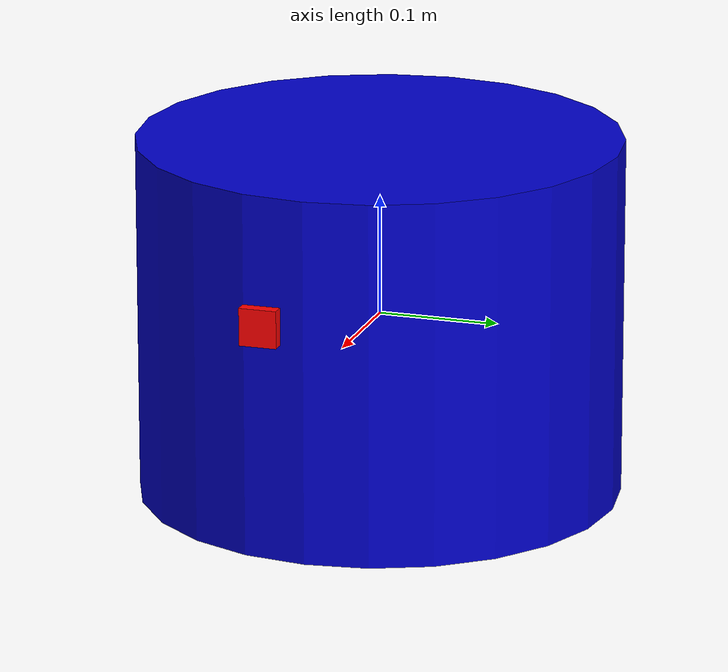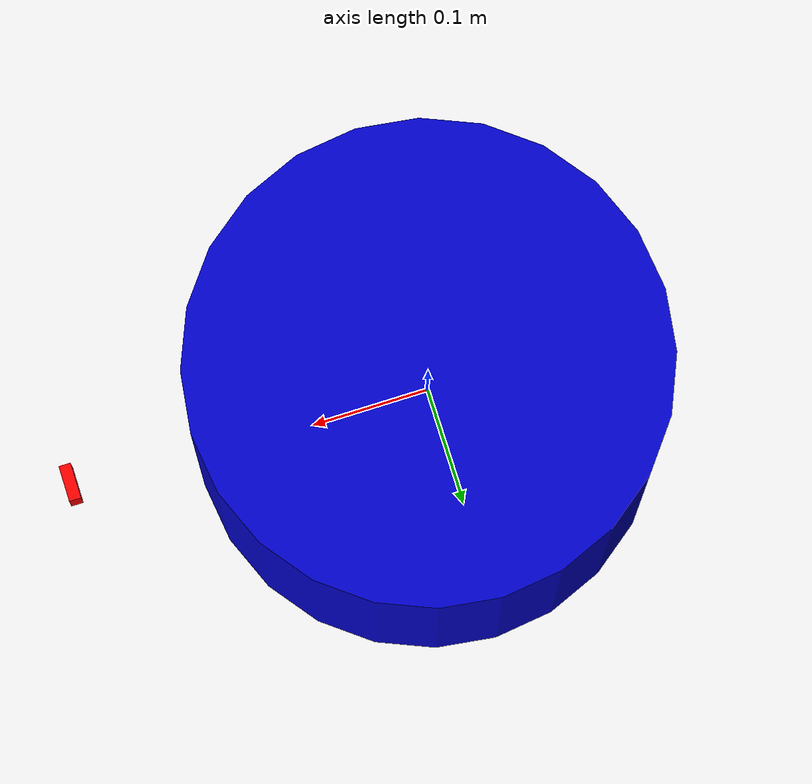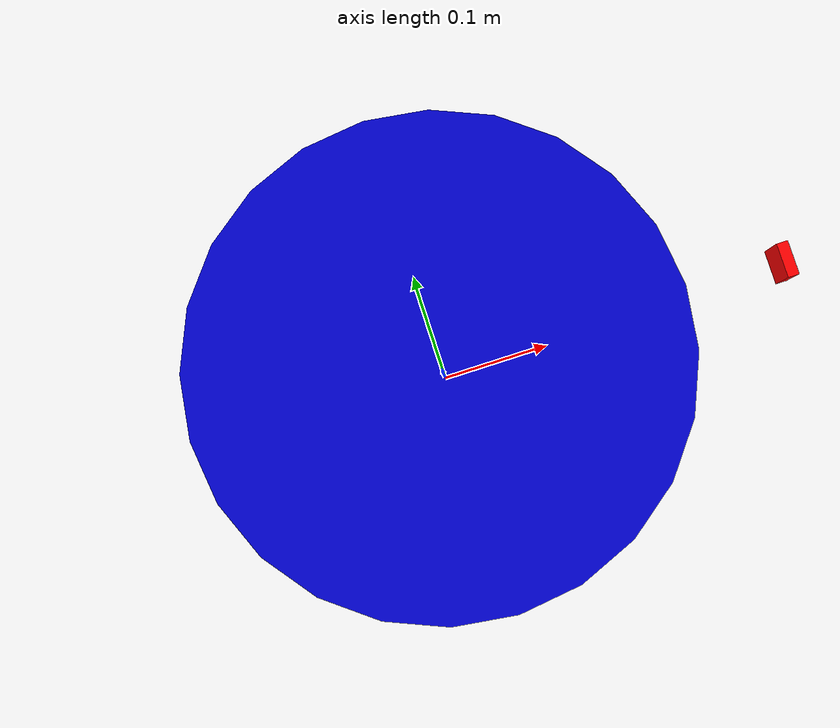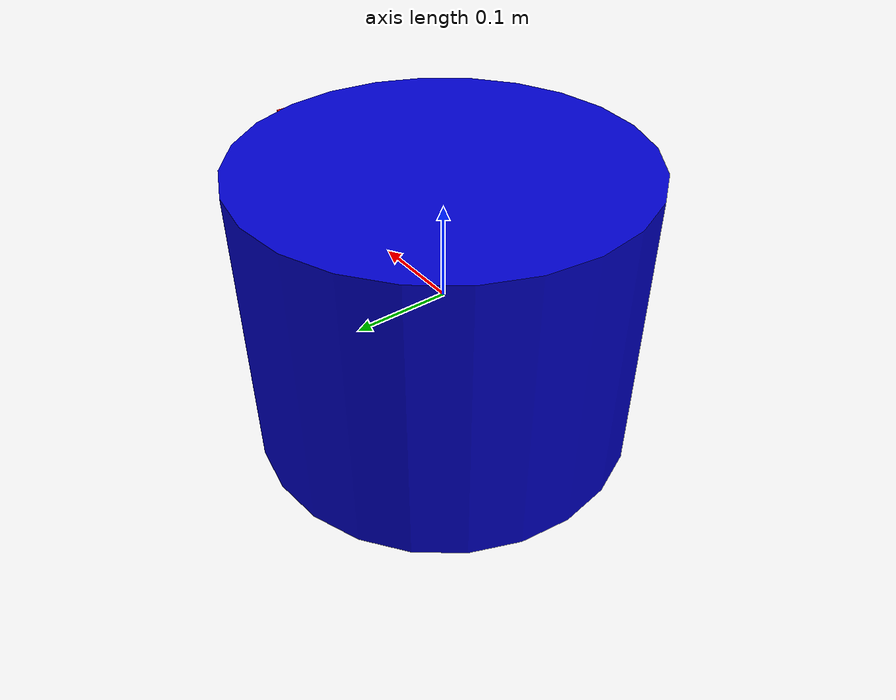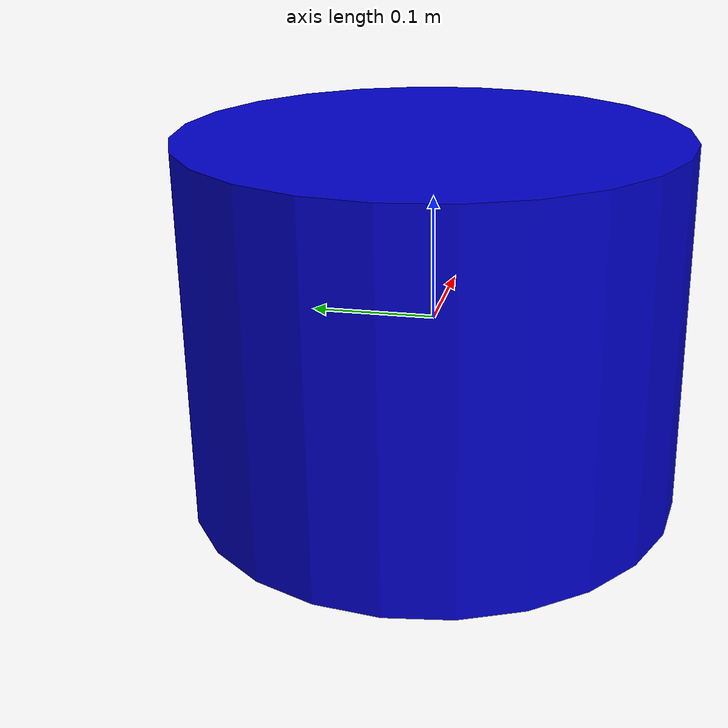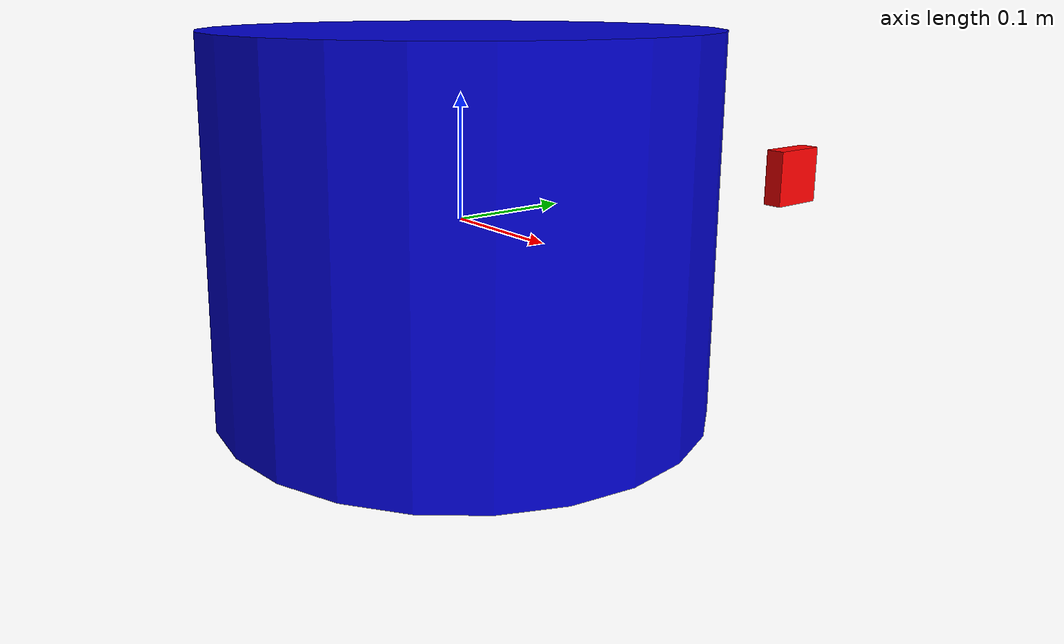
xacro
<?xml version="1.0"?>
<robot name="robot1" xmlns:xacro="http://ros.org/wiki/xacro">

  <xacro:property name="width" value="0.2" />
  <xacro:property name="bodylen" value="0.3" />

  <material name="blue">
    <color rgba="0 0 0.8 1"/>
  </material>

  <material name="red">
    <color rgba="1 0 0 1"/>
  </material>

  <xacro:macro name="default_inertial" params="mass">
    <inertial>
      <mass value="${mass}" />
      <inertia ixx="1.0" ixy="0.0" ixz="0.0" iyy="1.0" iyz="0.0" izz="1.0" />
    </inertial>
  </xacro:macro>

  <link name="base_link">
    <visual>
      <geometry>
        <cylinder radius="${width}" length="${bodylen}"/>
      </geometry>
      <material name="blue"/>
    </visual>
    <collision>
      <geometry>
        <cylinder radius="${width}" length="${bodylen}"/>
      </geometry>
    </collision>
    <xacro:default_inertial mass="10"/>
  </link>

  <link name="camera_link">
      <visual>
          <geometry>
              <box size="0.01 0.03 0.03"/>
          </geometry>
          <material name="red"/>
      </visual>
  </link>

  <joint name="camera_joint" type="fixed">
      <parent link="base_link"/>
      <child link="camera_link"/>
      <origin xyz="0.305 0 0.08" rpy="0 0 0"/>
  </joint>

  <link name="camera_optical_link"/>

  <joint name="camera_optical_joint" type="fixed">
      <parent link="camera_link"/>
      <child link="camera_optical_link"/>
      <origin xyz="0 0 0" rpy="${-pi/2} 0 ${-pi/2}"/>
  </joint>

  <gazebo reference="camera_link">
      <sensor name="camera" type="depth">
          <pose> 0 0 0 0 0 0 </pose>
          <visualize>true</visualize>
          <update_rate>10</update_rate>
          <camera>
              <horizontal_fov>1.089</horizontal_fov>
              <image>
                  <format>R8G8B8</format>
                  <width>640</width>
                  <height>480</height>
              </image>
              <clip>
                  <near>0.05</near>
                  <far>8.0</far>
              </clip>
          </camera>
          <plugin name="camera_controller" filename="libgazebo_ros_camera.so">
              <frame_name>camera_frame</frame_name>
              <topic_name>camera_topic</topic_name>
          </plugin>
      </sensor>
  </gazebo>

</robot>
